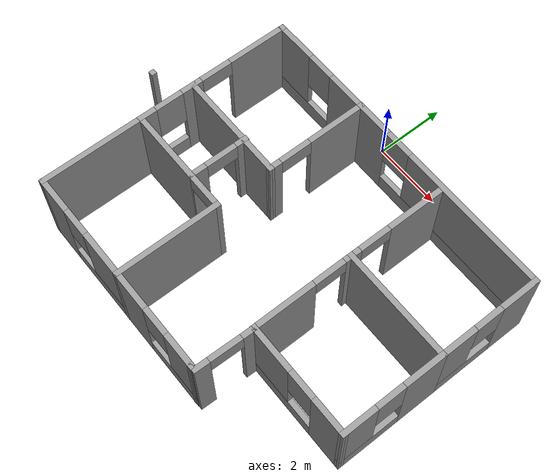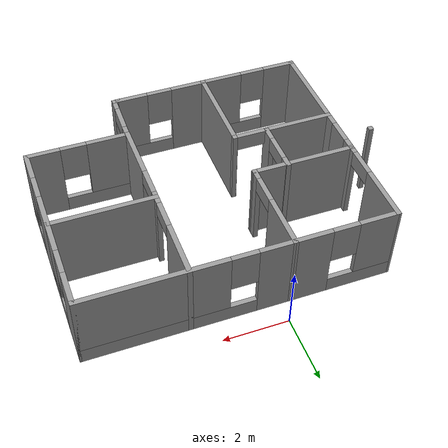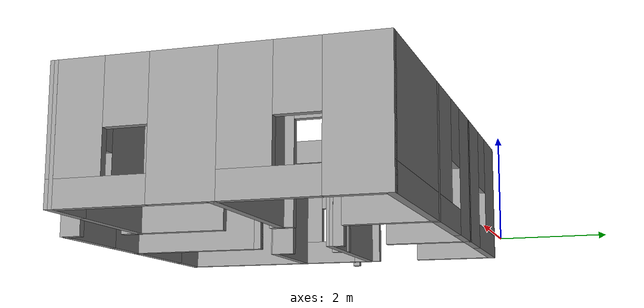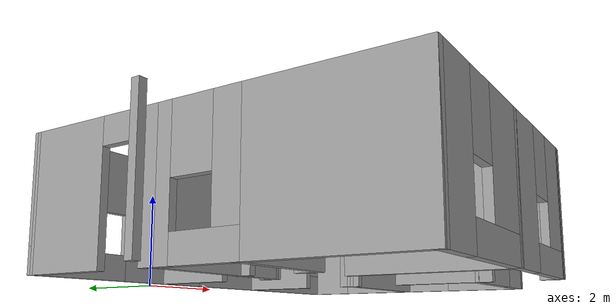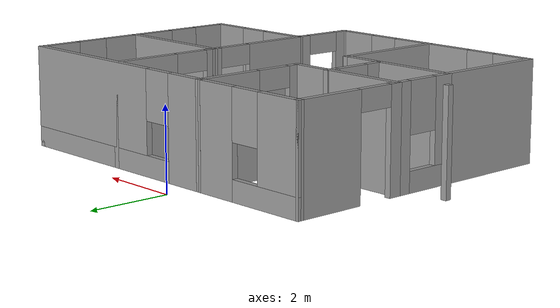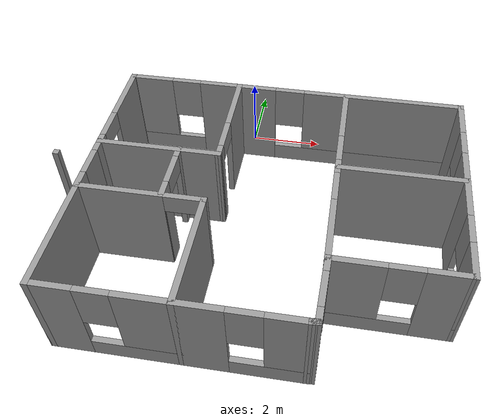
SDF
<?xml version='1.0'?>
<sdf version='1.7'>
  <model name='3house'>
    <pose>0.740121 -4.05574 0 0 -0 0</pose>
    <link name='Wall_1'>
      <collision name='Wall_1_Collision'>
        <geometry>
          <box>
            <size>0.15 0.15 2.5</size>
          </box>
        </geometry>
        <pose>0 0 1.25 0 -0 0</pose>
      </collision>
      <visual name='Wall_1_Visual'>
        <pose>0 0 1.25 0 -0 0</pose>
        <geometry>
          <box>
            <size>0.15 0.15 2.5</size>
          </box>
        </geometry>
        <material>
          <script>
            <uri>file://media/materials/scripts/gazebo.material</uri>
            <name>Gazebo/Grey</name>
          </script>
          <ambient>0 0 0 1</ambient>
        </material>
        <meta>
          <layer>0</layer>
        </meta>
      </visual>
      <pose>-5.06012 -0.104259 0 0 -0 0</pose>
    </link>
    <link name='Wall_10'>
      <pose>5.05988 1.91074 0 0 -0 -1.5708</pose>
      <visual name='Wall_10_Visual_0'>
        <pose>-0.937445 0 1.25 0 -0 0</pose>
        <geometry>
          <box>
            <size>1.12511 0.15 2.5</size>
          </box>
        </geometry>
        <material>
          <script>
            <uri>file://media/materials/scripts/gazebo.material</uri>
            <name>Gazebo/Grey</name>
          </script>
          <ambient>1 1 1 1</ambient>
        </material>
        <meta>
          <layer>0</layer>
        </meta>
      </visual>
      <collision name='Wall_10_Collision_0'>
        <geometry>
          <box>
            <size>1.12511 0.15 2.5</size>
          </box>
        </geometry>
        <pose>-0.937445 0 1.25 0 -0 0</pose>
      </collision>
      <visual name='Wall_10_Visual_1'>
        <pose>0.562555 0 0.25 0 -0 0</pose>
        <geometry>
          <box>
            <size>1.87489 0.15 0.5</size>
          </box>
        </geometry>
        <material>
          <script>
            <uri>file://media/materials/scripts/gazebo.material</uri>
            <name>Gazebo/Grey</name>
          </script>
          <ambient>1 1 1 1</ambient>
        </material>
        <meta>
          <layer>0</layer>
        </meta>
      </visual>
      <collision name='Wall_10_Collision_1'>
        <geometry>
          <box>
            <size>1.87489 0.15 0.5</size>
          </box>
        </geometry>
        <pose>0.562555 0 0.25 0 -0 0</pose>
      </collision>
      <visual name='Wall_10_Visual_2'>
        <pose>0.962555 0 1.5 0 -0 0</pose>
        <geometry>
          <box>
            <size>1.07489 0.15 2</size>
          </box>
        </geometry>
        <material>
          <script>
            <uri>file://media/materials/scripts/gazebo.material</uri>
            <name>Gazebo/Grey</name>
          </script>
          <ambient>1 1 1 1</ambient>
        </material>
        <meta>
          <layer>0</layer>
        </meta>
      </visual>
      <collision name='Wall_10_Collision_2'>
        <geometry>
          <box>
            <size>1.07489 0.15 2</size>
          </box>
        </geometry>
        <pose>0.962555 0 1.5 0 -0 0</pose>
      </collision>
      <visual name='Wall_10_Visual_3'>
        <pose>0.02511 0 1.9 0 -0 0</pose>
        <geometry>
          <box>
            <size>0.8 0.15 1.2</size>
          </box>
        </geometry>
        <material>
          <script>
            <uri>file://media/materials/scripts/gazebo.material</uri>
            <name>Gazebo/Grey</name>
          </script>
          <ambient>1 1 1 1</ambient>
        </material>
        <meta>
          <layer>0</layer>
        </meta>
      </visual>
      <collision name='Wall_10_Collision_3'>
        <geometry>
          <box>
            <size>0.8 0.15 1.2</size>
          </box>
        </geometry>
        <pose>0.02511 0 1.9 0 -0 0</pose>
      </collision>
    </link>
    <link name='Wall_11'>
      <collision name='Wall_11_Collision'>
        <geometry>
          <box>
            <size>3.25 0.15 2.5</size>
          </box>
        </geometry>
        <pose>0 0 1.25 0 -0 0</pose>
      </collision>
      <visual name='Wall_11_Visual'>
        <pose>0 0 1.25 0 -0 0</pose>
        <geometry>
          <box>
            <size>3.25 0.15 2.5</size>
          </box>
        </geometry>
        <material>
          <script>
            <uri>file://media/materials/scripts/gazebo.material</uri>
            <name>Gazebo/Grey</name>
          </script>
          <ambient>1 1 1 1</ambient>
        </material>
        <meta>
          <layer>0</layer>
        </meta>
      </visual>
      <pose>3.50988 0.485741 0 0 -0 3.14159</pose>
    </link>
    <link name='Wall_12'>
      <pose>1.95988 1.91074 0 0 -0 1.5708</pose>
      <visual name='Wall_12_Visual_0'>
        <pose>-1.33451 0 1.25 0 -0 0</pose>
        <geometry>
          <box>
            <size>0.330972 0.15 2.5</size>
          </box>
        </geometry>
        <material>
          <script>
            <uri>file://media/materials/scripts/gazebo.material</uri>
            <name>Gazebo/Grey</name>
          </script>
          <ambient>1 1 1 1</ambient>
        </material>
        <meta>
          <layer>0</layer>
        </meta>
      </visual>
      <collision name='Wall_12_Collision_0'>
        <geometry>
          <box>
            <size>0.330972 0.15 2.5</size>
          </box>
        </geometry>
        <pose>-1.33451 0 1.25 0 -0 0</pose>
      </collision>
      <visual name='Wall_12_Visual_1'>
        <pose>0.615486 0 1.25 0 -0 0</pose>
        <geometry>
          <box>
            <size>1.76903 0.15 2.5</size>
          </box>
        </geometry>
        <material>
          <script>
            <uri>file://media/materials/scripts/gazebo.material</uri>
            <name>Gazebo/Grey</name>
          </script>
          <ambient>1 1 1 1</ambient>
        </material>
        <meta>
          <layer>0</layer>
        </meta>
      </visual>
      <collision name='Wall_12_Collision_1'>
        <geometry>
          <box>
            <size>1.76903 0.15 2.5</size>
          </box>
        </geometry>
        <pose>0.615486 0 1.25 0 -0 0</pose>
      </collision>
      <visual name='Wall_12_Visual_2'>
        <pose>-0.719028 0 2.25 0 -0 0</pose>
        <geometry>
          <box>
            <size>0.9 0.15 0.5</size>
          </box>
        </geometry>
        <material>
          <script>
            <uri>file://media/materials/scripts/gazebo.material</uri>
            <name>Gazebo/Grey</name>
          </script>
          <ambient>1 1 1 1</ambient>
        </material>
        <meta>
          <layer>0</layer>
        </meta>
      </visual>
      <collision name='Wall_12_Collision_2'>
        <geometry>
          <box>
            <size>0.9 0.15 0.5</size>
          </box>
        </geometry>
        <pose>-0.719028 0 2.25 0 -0 0</pose>
      </collision>
    </link>
    <link name='Wall_14'>
      <pose>5.05988 -0.939259 0 0 -0 -1.5708</pose>
      <visual name='Wall_14_Visual_0'>
        <pose>-0.905217 0 1.25 0 -0 0</pose>
        <geometry>
          <box>
            <size>1.18957 0.15 2.5</size>
          </box>
        </geometry>
        <material>
          <script>
            <uri>file://media/materials/scripts/gazebo.material</uri>
            <name>Gazebo/Grey</name>
          </script>
          <ambient>1 1 1 1</ambient>
        </material>
        <meta>
          <layer>0</layer>
        </meta>
      </visual>
      <collision name='Wall_14_Collision_0'>
        <geometry>
          <box>
            <size>1.18957 0.15 2.5</size>
          </box>
        </geometry>
        <pose>-0.905217 0 1.25 0 -0 0</pose>
      </collision>
      <visual name='Wall_14_Visual_1'>
        <pose>0.594783 0 0.25 0 -0 0</pose>
        <geometry>
          <box>
            <size>1.81043 0.15 0.5</size>
          </box>
        </geometry>
        <material>
          <script>
            <uri>file://media/materials/scripts/gazebo.material</uri>
            <name>Gazebo/Grey</name>
          </script>
          <ambient>1 1 1 1</ambient>
        </material>
        <meta>
          <layer>0</layer>
        </meta>
      </visual>
      <collision name='Wall_14_Collision_1'>
        <geometry>
          <box>
            <size>1.81043 0.15 0.5</size>
          </box>
        </geometry>
        <pose>0.594783 0 0.25 0 -0 0</pose>
      </collision>
      <visual name='Wall_14_Visual_2'>
        <pose>0.994783 0 1.5 0 -0 0</pose>
        <geometry>
          <box>
            <size>1.01043 0.15 2</size>
          </box>
        </geometry>
        <material>
          <script>
            <uri>file://media/materials/scripts/gazebo.material</uri>
            <name>Gazebo/Grey</name>
          </script>
          <ambient>1 1 1 1</ambient>
        </material>
        <meta>
          <layer>0</layer>
        </meta>
      </visual>
      <collision name='Wall_14_Collision_2'>
        <geometry>
          <box>
            <size>1.01043 0.15 2</size>
          </box>
        </geometry>
        <pose>0.994783 0 1.5 0 -0 0</pose>
      </collision>
      <visual name='Wall_14_Visual_3'>
        <pose>0.089566 0 1.9 0 -0 0</pose>
        <geometry>
          <box>
            <size>0.8 0.15 1.2</size>
          </box>
        </geometry>
        <material>
          <script>
            <uri>file://media/materials/scripts/gazebo.material</uri>
            <name>Gazebo/Grey</name>
          </script>
          <ambient>1 1 1 1</ambient>
        </material>
        <meta>
          <layer>0</layer>
        </meta>
      </visual>
      <collision name='Wall_14_Collision_3'>
        <geometry>
          <box>
            <size>0.8 0.15 1.2</size>
          </box>
        </geometry>
        <pose>0.089566 0 1.9 0 -0 0</pose>
      </collision>
    </link>
    <link name='Wall_15'>
      <pose>3.51488 -2.35926 0 0 -0 3.13836</pose>
      <visual name='Wall_15_Visual_0'>
        <pose>-1.08159 0 1.25 0 -0 0</pose>
        <geometry>
          <box>
            <size>1.07683 0.15 2.5</size>
          </box>
        </geometry>
        <material>
          <script>
            <uri>file://media/materials/scripts/gazebo.material</uri>
            <name>Gazebo/Grey</name>
          </script>
          <ambient>1 1 1 1</ambient>
        </material>
        <meta>
          <layer>0</layer>
        </meta>
      </visual>
      <collision name='Wall_15_Collision_0'>
        <geometry>
          <box>
            <size>1.07683 0.15 2.5</size>
          </box>
        </geometry>
        <pose>-1.08159 0 1.25 0 -0 0</pose>
      </collision>
      <visual name='Wall_15_Visual_1'>
        <pose>0.538417 0 0.25 0 -0 0</pose>
        <geometry>
          <box>
            <size>2.16318 0.15 0.5</size>
          </box>
        </geometry>
        <material>
          <script>
            <uri>file://media/materials/scripts/gazebo.material</uri>
            <name>Gazebo/Grey</name>
          </script>
          <ambient>1 1 1 1</ambient>
        </material>
        <meta>
          <layer>0</layer>
        </meta>
      </visual>
      <collision name='Wall_15_Collision_1'>
        <geometry>
          <box>
            <size>2.16318 0.15 0.5</size>
          </box>
        </geometry>
        <pose>0.538417 0 0.25 0 -0 0</pose>
      </collision>
      <visual name='Wall_15_Visual_2'>
        <pose>0.938417 0 1.5 0 -0 0</pose>
        <geometry>
          <box>
            <size>1.36318 0.15 2</size>
          </box>
        </geometry>
        <material>
          <script>
            <uri>file://media/materials/scripts/gazebo.material</uri>
            <name>Gazebo/Grey</name>
          </script>
          <ambient>1 1 1 1</ambient>
        </material>
        <meta>
          <layer>0</layer>
        </meta>
      </visual>
      <collision name='Wall_15_Collision_2'>
        <geometry>
          <box>
            <size>1.36318 0.15 2</size>
          </box>
        </geometry>
        <pose>0.938417 0 1.5 0 -0 0</pose>
      </collision>
      <visual name='Wall_15_Visual_3'>
        <pose>-0.143175 0 1.9 0 -0 0</pose>
        <geometry>
          <box>
            <size>0.8 0.15 1.2</size>
          </box>
        </geometry>
        <material>
          <script>
            <uri>file://media/materials/scripts/gazebo.material</uri>
            <name>Gazebo/Grey</name>
          </script>
          <ambient>1 1 1 1</ambient>
        </material>
        <meta>
          <layer>0</layer>
        </meta>
      </visual>
      <collision name='Wall_15_Collision_3'>
        <geometry>
          <box>
            <size>0.8 0.15 1.2</size>
          </box>
        </geometry>
        <pose>-0.143175 0 1.9 0 -0 0</pose>
      </collision>
    </link>
    <link name='Wall_16'>
      <pose>1.96488 -0.934259 0 0 -0 1.57432</pose>
      <visual name='Wall_16_Visual_0'>
        <pose>-0.59199 0 1.25 0 -0 0</pose>
        <geometry>
          <box>
            <size>1.8063 0.15 2.5</size>
          </box>
        </geometry>
        <material>
          <script>
            <uri>file://media/materials/scripts/gazebo.material</uri>
            <name>Gazebo/Grey</name>
          </script>
          <ambient>1 1 1 1</ambient>
        </material>
        <meta>
          <layer>0</layer>
        </meta>
      </visual>
      <collision name='Wall_16_Collision_0'>
        <geometry>
          <box>
            <size>1.8063 0.15 2.5</size>
          </box>
        </geometry>
        <pose>-0.59199 0 1.25 0 -0 0</pose>
      </collision>
      <visual name='Wall_16_Visual_1'>
        <pose>1.35315 0 1.25 0 -0 0</pose>
        <geometry>
          <box>
            <size>0.283979 0.15 2.5</size>
          </box>
        </geometry>
        <material>
          <script>
            <uri>file://media/materials/scripts/gazebo.material</uri>
            <name>Gazebo/Grey</name>
          </script>
          <ambient>1 1 1 1</ambient>
        </material>
        <meta>
          <layer>0</layer>
        </meta>
      </visual>
      <collision name='Wall_16_Collision_1'>
        <geometry>
          <box>
            <size>0.283979 0.15 2.5</size>
          </box>
        </geometry>
        <pose>1.35315 0 1.25 0 -0 0</pose>
      </collision>
      <visual name='Wall_16_Visual_2'>
        <pose>0.761162 0 2.25 0 -0 0</pose>
        <geometry>
          <box>
            <size>0.9 0.15 0.5</size>
          </box>
        </geometry>
        <material>
          <script>
            <uri>file://media/materials/scripts/gazebo.material</uri>
            <name>Gazebo/Grey</name>
          </script>
          <ambient>1 1 1 1</ambient>
        </material>
        <meta>
          <layer>0</layer>
        </meta>
      </visual>
      <collision name='Wall_16_Collision_2'>
        <geometry>
          <box>
            <size>0.9 0.15 0.5</size>
          </box>
        </geometry>
        <pose>0.761162 0 2.25 0 -0 0</pose>
      </collision>
    </link>
    <link name='Wall_18'>
      <pose>-4.13012 -0.324259 0 0 -0 -1.5708</pose>
      <visual name='Wall_18_Visual_0'>
        <pose>-0.655307 0 1.25 0 -0 0</pose>
        <geometry>
          <box>
            <size>0.439386 0.15 2.5</size>
          </box>
        </geometry>
        <material>
          <script>
            <uri>file://media/materials/scripts/gazebo.material</uri>
            <name>Gazebo/Grey</name>
          </script>
          <ambient>1 1 1 1</ambient>
        </material>
        <meta>
          <layer>0</layer>
        </meta>
      </visual>
      <collision name='Wall_18_Collision_0'>
        <geometry>
          <box>
            <size>0.439386 0.15 2.5</size>
          </box>
        </geometry>
        <pose>-0.655307 0 1.25 0 -0 0</pose>
      </collision>
      <visual name='Wall_18_Visual_1'>
        <pose>0.219693 0 0.25 0 -0 0</pose>
        <geometry>
          <box>
            <size>1.31061 0.15 0.5</size>
          </box>
        </geometry>
        <material>
          <script>
            <uri>file://media/materials/scripts/gazebo.material</uri>
            <name>Gazebo/Grey</name>
          </script>
          <ambient>1 1 1 1</ambient>
        </material>
        <meta>
          <layer>0</layer>
        </meta>
      </visual>
      <collision name='Wall_18_Collision_1'>
        <geometry>
          <box>
            <size>1.31061 0.15 0.5</size>
          </box>
        </geometry>
        <pose>0.219693 0 0.25 0 -0 0</pose>
      </collision>
      <visual name='Wall_18_Visual_2'>
        <pose>0.619693 0 1.5 0 -0 0</pose>
        <geometry>
          <box>
            <size>0.510614 0.15 2</size>
          </box>
        </geometry>
        <material>
          <script>
            <uri>file://media/materials/scripts/gazebo.material</uri>
            <name>Gazebo/Grey</name>
          </script>
          <ambient>1 1 1 1</ambient>
        </material>
        <meta>
          <layer>0</layer>
        </meta>
      </visual>
      <collision name='Wall_18_Collision_2'>
        <geometry>
          <box>
            <size>0.510614 0.15 2</size>
          </box>
        </geometry>
        <pose>0.619693 0 1.5 0 -0 0</pose>
      </collision>
      <visual name='Wall_18_Visual_3'>
        <pose>-0.035614 0 1.9 0 -0 0</pose>
        <geometry>
          <box>
            <size>0.8 0.15 1.2</size>
          </box>
        </geometry>
        <material>
          <script>
            <uri>file://media/materials/scripts/gazebo.material</uri>
            <name>Gazebo/Grey</name>
          </script>
          <ambient>1 1 1 1</ambient>
        </material>
        <meta>
          <layer>0</layer>
        </meta>
      </visual>
      <collision name='Wall_18_Collision_3'>
        <geometry>
          <box>
            <size>0.8 0.15 1.2</size>
          </box>
        </geometry>
        <pose>-0.035614 0 1.9 0 -0 0</pose>
      </collision>
    </link>
    <link name='Wall_2'>
      <pose>-4.13012 1.90074 0 0 -0 -1.5708</pose>
      <visual name='Wall_2_Visual_0'>
        <pose>-0.608921 0 1.25 0 -0 0</pose>
        <geometry>
          <box>
            <size>1.78216 0.15 2.5</size>
          </box>
        </geometry>
        <material>
          <script>
            <uri>file://media/materials/scripts/gazebo.material</uri>
            <name>Gazebo/Grey</name>
          </script>
          <ambient>1 1 1 1</ambient>
        </material>
        <meta>
          <layer>0</layer>
        </meta>
      </visual>
      <collision name='Wall_2_Collision_0'>
        <geometry>
          <box>
            <size>1.78216 0.15 2.5</size>
          </box>
        </geometry>
        <pose>-0.608921 0 1.25 0 -0 0</pose>
      </collision>
      <visual name='Wall_2_Visual_1'>
        <pose>1.34108 0 1.25 0 -0 0</pose>
        <geometry>
          <box>
            <size>0.317842 0.15 2.5</size>
          </box>
        </geometry>
        <material>
          <script>
            <uri>file://media/materials/scripts/gazebo.material</uri>
            <name>Gazebo/Grey</name>
          </script>
          <ambient>1 1 1 1</ambient>
        </material>
        <meta>
          <layer>0</layer>
        </meta>
      </visual>
      <collision name='Wall_2_Collision_1'>
        <geometry>
          <box>
            <size>0.317842 0.15 2.5</size>
          </box>
        </geometry>
        <pose>1.34108 0 1.25 0 -0 0</pose>
      </collision>
      <visual name='Wall_2_Visual_2'>
        <pose>0.732158 0 2.25 0 -0 0</pose>
        <geometry>
          <box>
            <size>0.9 0.15 0.5</size>
          </box>
        </geometry>
        <material>
          <script>
            <uri>file://media/materials/scripts/gazebo.material</uri>
            <name>Gazebo/Grey</name>
          </script>
          <ambient>1 1 1 1</ambient>
        </material>
        <meta>
          <layer>0</layer>
        </meta>
      </visual>
      <collision name='Wall_2_Collision_2'>
        <geometry>
          <box>
            <size>0.9 0.15 0.5</size>
          </box>
        </geometry>
        <pose>0.732158 0 2.25 0 -0 0</pose>
      </collision>
    </link>
    <link name='Wall_21'>
      <pose>-2.58012 -1.12426 0 0 -0 0</pose>
      <visual name='Wall_21_Visual_0'>
        <pose>-0.5225 0 1.25 0 -0 0</pose>
        <geometry>
          <box>
            <size>2.205 0.15 2.5</size>
          </box>
        </geometry>
        <material>
          <script>
            <uri>file://media/materials/scripts/gazebo.material</uri>
            <name>Gazebo/Grey</name>
          </script>
          <ambient>1 1 1 1</ambient>
        </material>
        <meta>
          <layer>0</layer>
        </meta>
      </visual>
      <collision name='Wall_21_Collision_0'>
        <geometry>
          <box>
            <size>2.205 0.15 2.5</size>
          </box>
        </geometry>
        <pose>-0.5225 0 1.25 0 -0 0</pose>
      </collision>
      <visual name='Wall_21_Visual_1'>
        <pose>1.5525 0 1.25 0 -0 0</pose>
        <geometry>
          <box>
            <size>0.145 0.15 2.5</size>
          </box>
        </geometry>
        <material>
          <script>
            <uri>file://media/materials/scripts/gazebo.material</uri>
            <name>Gazebo/Grey</name>
          </script>
          <ambient>1 1 1 1</ambient>
        </material>
        <meta>
          <layer>0</layer>
        </meta>
      </visual>
      <collision name='Wall_21_Collision_1'>
        <geometry>
          <box>
            <size>0.145 0.15 2.5</size>
          </box>
        </geometry>
        <pose>1.5525 0 1.25 0 -0 0</pose>
      </collision>
      <visual name='Wall_21_Visual_2'>
        <pose>1.03 0 2.25 0 -0 0</pose>
        <geometry>
          <box>
            <size>0.9 0.15 0.5</size>
          </box>
        </geometry>
        <material>
          <script>
            <uri>file://media/materials/scripts/gazebo.material</uri>
            <name>Gazebo/Grey</name>
          </script>
          <ambient>1 1 1 1</ambient>
        </material>
        <meta>
          <layer>0</layer>
        </meta>
      </visual>
      <collision name='Wall_21_Collision_2'>
        <geometry>
          <box>
            <size>0.9 0.15 0.5</size>
          </box>
        </geometry>
        <pose>1.03 0 2.25 0 -0 0</pose>
      </collision>
    </link>
    <link name='Wall_23'>
      <pose>-2.06012 -0.294259 0 0 -0 1.5708</pose>
      <visual name='Wall_23_Visual_0'>
        <pose>-0.6325 0 1.25 0 -0 0</pose>
        <geometry>
          <box>
            <size>0.485 0.15 2.5</size>
          </box>
        </geometry>
        <material>
          <script>
            <uri>file://media/materials/scripts/gazebo.material</uri>
            <name>Gazebo/Grey</name>
          </script>
          <ambient>1 1 1 1</ambient>
        </material>
        <meta>
          <layer>0</layer>
        </meta>
      </visual>
      <collision name='Wall_23_Collision_0'>
        <geometry>
          <box>
            <size>0.485 0.15 2.5</size>
          </box>
        </geometry>
        <pose>-0.6325 0 1.25 0 -0 0</pose>
      </collision>
      <visual name='Wall_23_Visual_1'>
        <pose>0.6925 0 1.25 0 -0 0</pose>
        <geometry>
          <box>
            <size>0.365 0.15 2.5</size>
          </box>
        </geometry>
        <material>
          <script>
            <uri>file://media/materials/scripts/gazebo.material</uri>
            <name>Gazebo/Grey</name>
          </script>
          <ambient>1 1 1 1</ambient>
        </material>
        <meta>
          <layer>0</layer>
        </meta>
      </visual>
      <collision name='Wall_23_Collision_1'>
        <geometry>
          <box>
            <size>0.365 0.15 2.5</size>
          </box>
        </geometry>
        <pose>0.6925 0 1.25 0 -0 0</pose>
      </collision>
      <visual name='Wall_23_Visual_2'>
        <pose>0.06 0 2.25 0 -0 0</pose>
        <geometry>
          <box>
            <size>0.9 0.15 0.5</size>
          </box>
        </geometry>
        <material>
          <script>
            <uri>file://media/materials/scripts/gazebo.material</uri>
            <name>Gazebo/Grey</name>
          </script>
          <ambient>1 1 1 1</ambient>
        </material>
        <meta>
          <layer>0</layer>
        </meta>
      </visual>
      <collision name='Wall_23_Collision_2'>
        <geometry>
          <box>
            <size>0.9 0.15 0.5</size>
          </box>
        </geometry>
        <pose>0.06 0 2.25 0 -0 0</pose>
      </collision>
    </link>
    <link name='Wall_25'>
      <collision name='Wall_25_Collision'>
        <geometry>
          <box>
            <size>3 0.15 2.5</size>
          </box>
        </geometry>
        <pose>0 0 1.25 0 -0 0</pose>
      </collision>
      <visual name='Wall_25_Visual'>
        <pose>0 0 1.25 0 -0 0</pose>
        <geometry>
          <box>
            <size>3 0.15 2.5</size>
          </box>
        </geometry>
        <material>
          <script>
            <uri>file://media/materials/scripts/gazebo.material</uri>
            <name>Gazebo/Grey</name>
          </script>
          <ambient>1 1 1 1</ambient>
        </material>
        <meta>
          <layer>0</layer>
        </meta>
      </visual>
      <pose>-4.13012 -2.54926 0 0 -0 -1.5708</pose>
    </link>
    <link name='Wall_26'>
      <pose>-2.58012 -3.97426 0 0 -0 0</pose>
      <visual name='Wall_26_Visual_0'>
        <pose>-1.08519 0 1.25 0 -0 0</pose>
        <geometry>
          <box>
            <size>1.07962 0.15 2.5</size>
          </box>
        </geometry>
        <material>
          <script>
            <uri>file://media/materials/scripts/gazebo.material</uri>
            <name>Gazebo/Grey</name>
          </script>
          <ambient>1 1 1 1</ambient>
        </material>
        <meta>
          <layer>0</layer>
        </meta>
      </visual>
      <collision name='Wall_26_Collision_0'>
        <geometry>
          <box>
            <size>1.07962 0.15 2.5</size>
          </box>
        </geometry>
        <pose>-1.08519 0 1.25 0 -0 0</pose>
      </collision>
      <visual name='Wall_26_Visual_1'>
        <pose>0.539808 0 0.25 0 -0 0</pose>
        <geometry>
          <box>
            <size>2.17038 0.15 0.5</size>
          </box>
        </geometry>
        <material>
          <script>
            <uri>file://media/materials/scripts/gazebo.material</uri>
            <name>Gazebo/Grey</name>
          </script>
          <ambient>1 1 1 1</ambient>
        </material>
        <meta>
          <layer>0</layer>
        </meta>
      </visual>
      <collision name='Wall_26_Collision_1'>
        <geometry>
          <box>
            <size>2.17038 0.15 0.5</size>
          </box>
        </geometry>
        <pose>0.539808 0 0.25 0 -0 0</pose>
      </collision>
      <visual name='Wall_26_Visual_2'>
        <pose>0.939808 0 1.5 0 -0 0</pose>
        <geometry>
          <box>
            <size>1.37038 0.15 2</size>
          </box>
        </geometry>
        <material>
          <script>
            <uri>file://media/materials/scripts/gazebo.material</uri>
            <name>Gazebo/Grey</name>
          </script>
          <ambient>1 1 1 1</ambient>
        </material>
        <meta>
          <layer>0</layer>
        </meta>
      </visual>
      <collision name='Wall_26_Collision_2'>
        <geometry>
          <box>
            <size>1.37038 0.15 2</size>
          </box>
        </geometry>
        <pose>0.939808 0 1.5 0 -0 0</pose>
      </collision>
      <visual name='Wall_26_Visual_3'>
        <pose>-0.145384 0 1.9 0 -0 0</pose>
        <geometry>
          <box>
            <size>0.8 0.15 1.2</size>
          </box>
        </geometry>
        <material>
          <script>
            <uri>file://media/materials/scripts/gazebo.material</uri>
            <name>Gazebo/Grey</name>
          </script>
          <ambient>1 1 1 1</ambient>
        </material>
        <meta>
          <layer>0</layer>
        </meta>
      </visual>
      <collision name='Wall_26_Collision_3'>
        <geometry>
          <box>
            <size>0.8 0.15 1.2</size>
          </box>
        </geometry>
        <pose>-0.145384 0 1.9 0 -0 0</pose>
      </collision>
    </link>
    <link name='Wall_27'>
      <collision name='Wall_27_Collision'>
        <geometry>
          <box>
            <size>3 0.15 2.5</size>
          </box>
        </geometry>
        <pose>0 0 1.25 0 -0 0</pose>
      </collision>
      <visual name='Wall_27_Visual'>
        <pose>0 0 1.25 0 -0 0</pose>
        <geometry>
          <box>
            <size>3 0.15 2.5</size>
          </box>
        </geometry>
        <material>
          <script>
            <uri>file://media/materials/scripts/gazebo.material</uri>
            <name>Gazebo/Grey</name>
          </script>
          <ambient>1 1 1 1</ambient>
        </material>
        <meta>
          <layer>0</layer>
        </meta>
      </visual>
      <pose>-1.03012 -2.54926 0 0 -0 1.5708</pose>
    </link>
    <link name='Wall_29'>
      <pose>0.394879 -3.97426 0 0 -0 0</pose>
      <visual name='Wall_29_Visual_0'>
        <pose>-0.91418 0 1.25 0 -0 0</pose>
        <geometry>
          <box>
            <size>1.17164 0.15 2.5</size>
          </box>
        </geometry>
        <material>
          <script>
            <uri>file://media/materials/scripts/gazebo.material</uri>
            <name>Gazebo/Grey</name>
          </script>
          <ambient>1 1 1 1</ambient>
        </material>
        <meta>
          <layer>0</layer>
        </meta>
      </visual>
      <collision name='Wall_29_Collision_0'>
        <geometry>
          <box>
            <size>1.17164 0.15 2.5</size>
          </box>
        </geometry>
        <pose>-0.91418 0 1.25 0 -0 0</pose>
      </collision>
      <visual name='Wall_29_Visual_1'>
        <pose>0.58582 0 0.25 0 -0 0</pose>
        <geometry>
          <box>
            <size>1.82836 0.15 0.5</size>
          </box>
        </geometry>
        <material>
          <script>
            <uri>file://media/materials/scripts/gazebo.material</uri>
            <name>Gazebo/Grey</name>
          </script>
          <ambient>1 1 1 1</ambient>
        </material>
        <meta>
          <layer>0</layer>
        </meta>
      </visual>
      <collision name='Wall_29_Collision_1'>
        <geometry>
          <box>
            <size>1.82836 0.15 0.5</size>
          </box>
        </geometry>
        <pose>0.58582 0 0.25 0 -0 0</pose>
      </collision>
      <visual name='Wall_29_Visual_2'>
        <pose>0.98582 0 1.5 0 -0 0</pose>
        <geometry>
          <box>
            <size>1.02836 0.15 2</size>
          </box>
        </geometry>
        <material>
          <script>
            <uri>file://media/materials/scripts/gazebo.material</uri>
            <name>Gazebo/Grey</name>
          </script>
          <ambient>1 1 1 1</ambient>
        </material>
        <meta>
          <layer>0</layer>
        </meta>
      </visual>
      <collision name='Wall_29_Collision_2'>
        <geometry>
          <box>
            <size>1.02836 0.15 2</size>
          </box>
        </geometry>
        <pose>0.98582 0 1.5 0 -0 0</pose>
      </collision>
      <visual name='Wall_29_Visual_3'>
        <pose>0.07164 0 1.9 0 -0 0</pose>
        <geometry>
          <box>
            <size>0.8 0.15 1.2</size>
          </box>
        </geometry>
        <material>
          <script>
            <uri>file://media/materials/scripts/gazebo.material</uri>
            <name>Gazebo/Grey</name>
          </script>
          <ambient>1 1 1 1</ambient>
        </material>
        <meta>
          <layer>0</layer>
        </meta>
      </visual>
      <collision name='Wall_29_Collision_3'>
        <geometry>
          <box>
            <size>0.8 0.15 1.2</size>
          </box>
        </geometry>
        <pose>0.07164 0 1.9 0 -0 0</pose>
      </collision>
    </link>
    <link name='Wall_3'>
      <collision name='Wall_3_Collision'>
        <geometry>
          <box>
            <size>3.25 0.15 2.5</size>
          </box>
        </geometry>
        <pose>0 0 1.25 0 -0 0</pose>
      </collision>
      <visual name='Wall_3_Visual'>
        <pose>0 0 1.25 0 -0 0</pose>
        <geometry>
          <box>
            <size>3.25 0.15 2.5</size>
          </box>
        </geometry>
        <material>
          <script>
            <uri>file://media/materials/scripts/gazebo.material</uri>
            <name>Gazebo/Grey</name>
          </script>
          <ambient>1 1 1 1</ambient>
        </material>
        <meta>
          <layer>0</layer>
        </meta>
      </visual>
      <pose>-2.58012 0.475741 0 0 -0 0</pose>
    </link>
    <link name='Wall_30'>
      <collision name='Wall_30_Collision'>
        <geometry>
          <box>
            <size>0.260454 0.15 2.5</size>
          </box>
        </geometry>
        <pose>0 0 1.25 0 -0 0</pose>
      </collision>
      <visual name='Wall_30_Visual'>
        <pose>0 0 1.25 0 -0 0</pose>
        <geometry>
          <box>
            <size>0.260454 0.15 2.5</size>
          </box>
        </geometry>
        <material>
          <script>
            <uri>file://media/materials/scripts/gazebo.material</uri>
            <name>Gazebo/Grey</name>
          </script>
          <ambient>1 1 1 1</ambient>
        </material>
        <meta>
          <layer>0</layer>
        </meta>
      </visual>
      <pose>1.87488 -3.96926 0 0 -0 0.09066</pose>
    </link>
    <link name='Wall_31'>
      <pose>1.95988 -3.15926 0 0 -0 1.54596</pose>
      <visual name='Wall_31_Visual_0'>
        <pose>-0.662641 0 1.25 0 -0 0</pose>
        <geometry>
          <box>
            <size>0.435215 0.15 2.5</size>
          </box>
        </geometry>
        <material>
          <script>
            <uri>file://media/materials/scripts/gazebo.material</uri>
            <name>Gazebo/Grey</name>
          </script>
          <ambient>1 1 1 1</ambient>
        </material>
        <meta>
          <layer>0</layer>
        </meta>
      </visual>
      <collision name='Wall_31_Collision_0'>
        <geometry>
          <box>
            <size>0.435215 0.15 2.5</size>
          </box>
        </geometry>
        <pose>-0.662641 0 1.25 0 -0 0</pose>
      </collision>
      <visual name='Wall_31_Visual_1'>
        <pose>0.667608 0 1.25 0 -0 0</pose>
        <geometry>
          <box>
            <size>0.425282 0.15 2.5</size>
          </box>
        </geometry>
        <material>
          <script>
            <uri>file://media/materials/scripts/gazebo.material</uri>
            <name>Gazebo/Grey</name>
          </script>
          <ambient>1 1 1 1</ambient>
        </material>
        <meta>
          <layer>0</layer>
        </meta>
      </visual>
      <collision name='Wall_31_Collision_1'>
        <geometry>
          <box>
            <size>0.425282 0.15 2.5</size>
          </box>
        </geometry>
        <pose>0.667608 0 1.25 0 -0 0</pose>
      </collision>
      <visual name='Wall_31_Visual_2'>
        <pose>0.004967 0 2.25 0 -0 0</pose>
        <geometry>
          <box>
            <size>0.9 0.15 0.5</size>
          </box>
        </geometry>
        <material>
          <script>
            <uri>file://media/materials/scripts/gazebo.material</uri>
            <name>Gazebo/Grey</name>
          </script>
          <ambient>1 1 1 1</ambient>
        </material>
        <meta>
          <layer>0</layer>
        </meta>
      </visual>
      <collision name='Wall_31_Collision_2'>
        <geometry>
          <box>
            <size>0.9 0.15 0.5</size>
          </box>
        </geometry>
        <pose>0.004967 0 2.25 0 -0 0</pose>
      </collision>
    </link>
    <link name='Wall_4'>
      <pose>-1.03512 1.90574 0 0 -0 1.57429</pose>
      <visual name='Wall_4_Visual_0'>
        <pose>-1.31191 0 1.25 0 -0 0</pose>
        <geometry>
          <box>
            <size>0.386201 0.15 2.5</size>
          </box>
        </geometry>
        <material>
          <script>
            <uri>file://media/materials/scripts/gazebo.material</uri>
            <name>Gazebo/Grey</name>
          </script>
          <ambient>1 1 1 1</ambient>
        </material>
        <meta>
          <layer>0</layer>
        </meta>
      </visual>
      <collision name='Wall_4_Collision_0'>
        <geometry>
          <box>
            <size>0.386201 0.15 2.5</size>
          </box>
        </geometry>
        <pose>-1.31191 0 1.25 0 -0 0</pose>
      </collision>
      <visual name='Wall_4_Visual_1'>
        <pose>0.643101 0 1.25 0 -0 0</pose>
        <geometry>
          <box>
            <size>1.72382 0.15 2.5</size>
          </box>
        </geometry>
        <material>
          <script>
            <uri>file://media/materials/scripts/gazebo.material</uri>
            <name>Gazebo/Grey</name>
          </script>
          <ambient>1 1 1 1</ambient>
        </material>
        <meta>
          <layer>0</layer>
        </meta>
      </visual>
      <collision name='Wall_4_Collision_1'>
        <geometry>
          <box>
            <size>1.72382 0.15 2.5</size>
          </box>
        </geometry>
        <pose>0.643101 0 1.25 0 -0 0</pose>
      </collision>
      <visual name='Wall_4_Visual_2'>
        <pose>-0.668807 0 2.25 0 -0 0</pose>
        <geometry>
          <box>
            <size>0.9 0.15 0.5</size>
          </box>
        </geometry>
        <material>
          <script>
            <uri>file://media/materials/scripts/gazebo.material</uri>
            <name>Gazebo/Grey</name>
          </script>
          <ambient>1 1 1 1</ambient>
        </material>
        <meta>
          <layer>0</layer>
        </meta>
      </visual>
      <collision name='Wall_4_Collision_2'>
        <geometry>
          <box>
            <size>0.9 0.15 0.5</size>
          </box>
        </geometry>
        <pose>-0.668807 0 2.25 0 -0 0</pose>
      </collision>
    </link>
    <link name='Wall_5'>
      <pose>-2.58512 3.33074 0 0 -0 -3.13836</pose>
      <visual name='Wall_5_Visual_0'>
        <pose>-1.02083 0 1.25 0 -0 0</pose>
        <geometry>
          <box>
            <size>1.19836 0.15 2.5</size>
          </box>
        </geometry>
        <material>
          <script>
            <uri>file://media/materials/scripts/gazebo.material</uri>
            <name>Gazebo/Grey</name>
          </script>
          <ambient>1 1 1 1</ambient>
        </material>
        <meta>
          <layer>0</layer>
        </meta>
      </visual>
      <collision name='Wall_5_Collision_0'>
        <geometry>
          <box>
            <size>1.19836 0.15 2.5</size>
          </box>
        </geometry>
        <pose>-1.02083 0 1.25 0 -0 0</pose>
      </collision>
      <visual name='Wall_5_Visual_1'>
        <pose>0.599182 0 0.25 0 -0 0</pose>
        <geometry>
          <box>
            <size>2.04165 0.15 0.5</size>
          </box>
        </geometry>
        <material>
          <script>
            <uri>file://media/materials/scripts/gazebo.material</uri>
            <name>Gazebo/Grey</name>
          </script>
          <ambient>1 1 1 1</ambient>
        </material>
        <meta>
          <layer>0</layer>
        </meta>
      </visual>
      <collision name='Wall_5_Collision_1'>
        <geometry>
          <box>
            <size>2.04165 0.15 0.5</size>
          </box>
        </geometry>
        <pose>0.599182 0 0.25 0 -0 0</pose>
      </collision>
      <visual name='Wall_5_Visual_2'>
        <pose>0.999182 0 1.5 0 -0 0</pose>
        <geometry>
          <box>
            <size>1.24165 0.15 2</size>
          </box>
        </geometry>
        <material>
          <script>
            <uri>file://media/materials/scripts/gazebo.material</uri>
            <name>Gazebo/Grey</name>
          </script>
          <ambient>1 1 1 1</ambient>
        </material>
        <meta>
          <layer>0</layer>
        </meta>
      </visual>
      <collision name='Wall_5_Collision_2'>
        <geometry>
          <box>
            <size>1.24165 0.15 2</size>
          </box>
        </geometry>
        <pose>0.999182 0 1.5 0 -0 0</pose>
      </collision>
      <visual name='Wall_5_Visual_3'>
        <pose>-0.021644 0 1.9 0 -0 0</pose>
        <geometry>
          <box>
            <size>0.8 0.15 1.2</size>
          </box>
        </geometry>
        <material>
          <script>
            <uri>file://media/materials/scripts/gazebo.material</uri>
            <name>Gazebo/Grey</name>
          </script>
          <ambient>1 1 1 1</ambient>
        </material>
        <meta>
          <layer>0</layer>
        </meta>
      </visual>
      <collision name='Wall_5_Collision_3'>
        <geometry>
          <box>
            <size>0.8 0.15 1.2</size>
          </box>
        </geometry>
        <pose>-0.021644 0 1.9 0 -0 0</pose>
      </collision>
    </link>
    <link name='Wall_6'>
      <collision name='Wall_6_Collision'>
        <geometry>
          <box>
            <size>0.16 0.15 2.5</size>
          </box>
        </geometry>
        <pose>0 0 1.25 0 -0 0</pose>
      </collision>
      <visual name='Wall_6_Visual'>
        <pose>0 0 1.25 0 -0 0</pose>
        <geometry>
          <box>
            <size>0.16 0.15 2.5</size>
          </box>
        </geometry>
        <material>
          <script>
            <uri>file://media/materials/scripts/gazebo.material</uri>
            <name>Gazebo/Grey</name>
          </script>
          <ambient>0 0 0 1</ambient>
        </material>
        <meta>
          <layer>0</layer>
        </meta>
      </visual>
      <pose>-4.12512 3.32574 0 0 -0 0</pose>
    </link>
    <link name='Wall_8'>
      <pose>2.00988 3.33574 0 0 -0 0</pose>
      <visual name='Wall_8_Visual_0'>
        <pose>-2.56888 0 1.25 0 -0 0</pose>
        <geometry>
          <box>
            <size>1.11225 0.15 2.5</size>
          </box>
        </geometry>
        <material>
          <script>
            <uri>file://media/materials/scripts/gazebo.material</uri>
            <name>Gazebo/Grey</name>
          </script>
          <ambient>1 1 1 1</ambient>
        </material>
        <meta>
          <layer>0</layer>
        </meta>
      </visual>
      <collision name='Wall_8_Collision_0'>
        <geometry>
          <box>
            <size>1.11225 0.15 2.5</size>
          </box>
        </geometry>
        <pose>-2.56888 0 1.25 0 -0 0</pose>
      </collision>
      <visual name='Wall_8_Visual_1'>
        <pose>0.556124 0 0.25 0 -0 0</pose>
        <geometry>
          <box>
            <size>5.13775 0.15 0.5</size>
          </box>
        </geometry>
        <material>
          <script>
            <uri>file://media/materials/scripts/gazebo.material</uri>
            <name>Gazebo/Grey</name>
          </script>
          <ambient>1 1 1 1</ambient>
        </material>
        <meta>
          <layer>0</layer>
        </meta>
      </visual>
      <collision name='Wall_8_Collision_1'>
        <geometry>
          <box>
            <size>5.13775 0.15 0.5</size>
          </box>
        </geometry>
        <pose>0.556124 0 0.25 0 -0 0</pose>
      </collision>
      <visual name='Wall_8_Visual_2'>
        <pose>0.956124 0 1.5 0 -0 0</pose>
        <geometry>
          <box>
            <size>4.33775 0.15 2</size>
          </box>
        </geometry>
        <material>
          <script>
            <uri>file://media/materials/scripts/gazebo.material</uri>
            <name>Gazebo/Grey</name>
          </script>
          <ambient>1 1 1 1</ambient>
        </material>
        <meta>
          <layer>0</layer>
        </meta>
      </visual>
      <collision name='Wall_8_Collision_2'>
        <geometry>
          <box>
            <size>4.33775 0.15 2</size>
          </box>
        </geometry>
        <pose>0.956124 0 1.5 0 -0 0</pose>
      </collision>
      <visual name='Wall_8_Visual_3'>
        <pose>-1.61275 0 1.9 0 -0 0</pose>
        <geometry>
          <box>
            <size>0.8 0.15 1.2</size>
          </box>
        </geometry>
        <material>
          <script>
            <uri>file://media/materials/scripts/gazebo.material</uri>
            <name>Gazebo/Grey</name>
          </script>
          <ambient>1 1 1 1</ambient>
        </material>
        <meta>
          <layer>0</layer>
        </meta>
      </visual>
      <collision name='Wall_8_Collision_3'>
        <geometry>
          <box>
            <size>0.8 0.15 1.2</size>
          </box>
        </geometry>
        <pose>-1.61275 0 1.9 0 -0 0</pose>
      </collision>
    </link>
    <static>1</static>
  </model>
</sdf>
